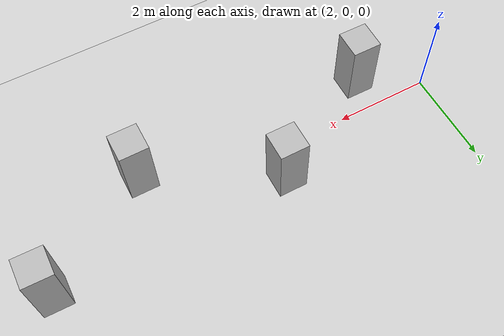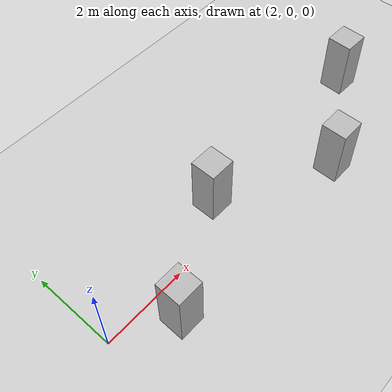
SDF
<?xml version="1.0"?>
<sdf version="1.6">
  <world name="v2-04g-p1-support-s5292">
    <gravity>0 0 -9.81</gravity>
    <physics name="v2_deterministic" type="ode">
      <max_step_size>0.002</max_step_size>
      <real_time_update_rate>500</real_time_update_rate>
    </physics>
    <include>
      <uri>model://sun</uri>
    </include>
    <include>
      <uri>model://ground_plane</uri>
    </include>
    <model name="pillar-1">
      <static>true</static>
      <pose>3.297776162 -0.700603268 0.750000000 0 0 -0.010944092</pose>
      <link name="link">
        <collision name="collision">
          <geometry>
            <box>
              <size>0.600000 0.600000 1.500000</size>
            </box>
          </geometry>
        </collision>
        <visual name="visual">
          <geometry>
            <box>
              <size>0.600000 0.600000 1.500000</size>
            </box>
          </geometry>
        </visual>
      </link>
    </model>
    <model name="pillar-2">
      <static>true</static>
      <pose>5.722912594 0.655792863 0.750000000 0 0 -0.004297548</pose>
      <link name="link">
        <collision name="collision">
          <geometry>
            <box>
              <size>0.600000 0.600000 1.500000</size>
            </box>
          </geometry>
        </collision>
        <visual name="visual">
          <geometry>
            <box>
              <size>0.600000 0.600000 1.500000</size>
            </box>
          </geometry>
        </visual>
      </link>
    </model>
    <model name="pillar-3">
      <static>true</static>
      <pose>8.327897541 -0.726120902 0.750000000 0 0 -0.001598755</pose>
      <link name="link">
        <collision name="collision">
          <geometry>
            <box>
              <size>0.600000 0.600000 1.500000</size>
            </box>
          </geometry>
        </collision>
        <visual name="visual">
          <geometry>
            <box>
              <size>0.600000 0.600000 1.500000</size>
            </box>
          </geometry>
        </visual>
      </link>
    </model>
    <model name="pillar-4">
      <static>true</static>
      <pose>10.702442832 0.754686338 0.750000000 0 0 -0.023532647</pose>
      <link name="link">
        <collision name="collision">
          <geometry>
            <box>
              <size>0.600000 0.600000 1.500000</size>
            </box>
          </geometry>
        </collision>
        <visual name="visual">
          <geometry>
            <box>
              <size>0.600000 0.600000 1.500000</size>
            </box>
          </geometry>
        </visual>
      </link>
    </model>
  </world>
</sdf>
